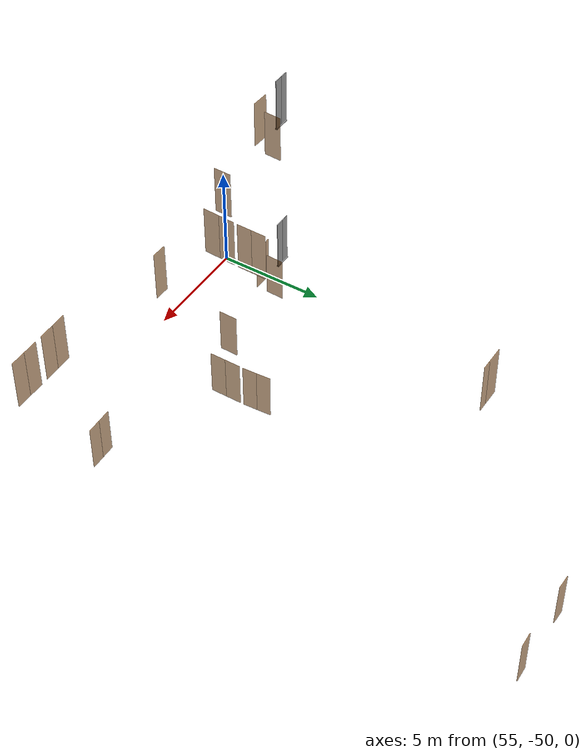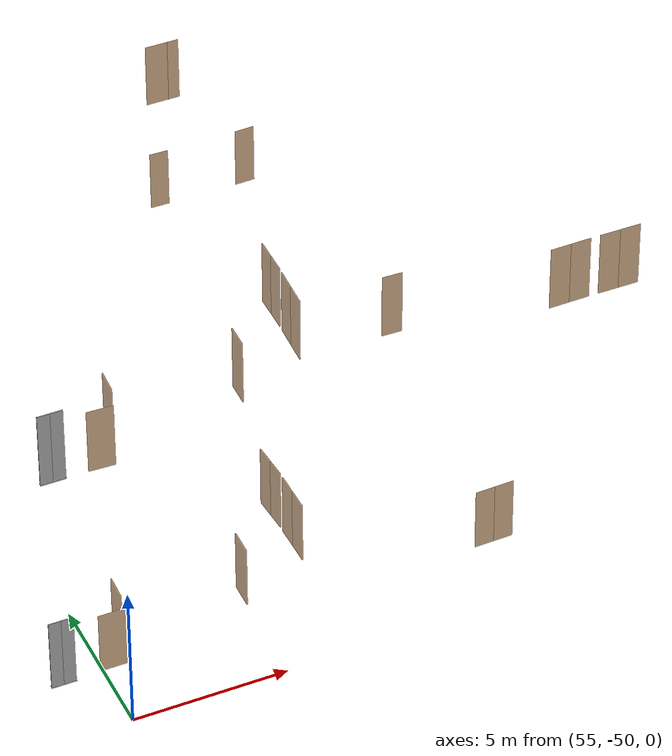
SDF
<sdf version="1.7">
 <world name="sim_world">
  <model name="bano06">
   <pose>55.41423266186635 -47.68037463002387 0.0 0 0 0.0023663209530105163</pose>
   <link name="right">
    <pose>0 0 1.11 0 0 0</pose>
    <visual name="right_visual">
     <geometry><box><size>0.976455656863217 0.03 2.2</size></box></geometry>
     <material>
      <ambient>0.5 0.25 0 0.6</ambient>
      <diffuse>0.5 0.25 0 0.6</diffuse>
      <pbr><metal><metalness>0.0</metalness></metal></pbr>
     </material>
    </visual>
    <collision name="right_collision">
     <geometry><box><size>0.976455656863217 0.03 2.2</size></box></geometry>
     <surface><contact><collide_bitmask>0x02</collide_bitmask></contact></surface>
    </collision>
    <inertial>
     <mass>50.0</mass>
     <inertia><ixx>20.17041666666667</ixx><iyy>24.139440207584073</iyy><izz>3.9765235409174027</izz></inertia>
    </inertial>
   </link>
   <joint name="right_joint" type="revolute">
    <parent>world</parent>
    <child>right</child>
    <axis><xyz>0 0 1</xyz><limit><lower>0</lower><upper>1.57</upper></limit></axis>
    <pose>0.4932278284316085 0 0 0 0 0</pose>
   </joint>
   <plugin name="register_component" filename="libregister_component.so">
    <component name="Door">
     <v_max_door>0.5</v_max_door>
     <a_max_door>0.3</a_max_door>
     <a_nom_door>0.15</a_nom_door>
     <dx_min_door>0.01</dx_min_door>
     <f_max_door>500.0</f_max_door>
     <ros_interface>true</ros_interface>
     <door name="bano06" type="SwingDoor" left_joint_name="empty_joint" right_joint_name="right_joint"/>
    </component>
   </plugin>
  </model>
  <model name="TD0008CW">
   <pose>55.8966070053002 -46.72136061243229 0.0 0 0 1.5301015660938087</pose>
   <link name="right">
    <pose>0 0 1.11 0 0 0</pose>
    <visual name="right_visual">
     <geometry><box><size>0.8644361759346737 0.03 2.2</size></box></geometry>
     <material>
      <ambient>0.5 0.25 0 0.6</ambient>
      <diffuse>0.5 0.25 0 0.6</diffuse>
      <pbr><metal><metalness>0.0</metalness></metal></pbr>
     </material>
    </visual>
    <collision name="right_collision">
     <geometry><box><size>0.8644361759346737 0.03 2.2</size></box></geometry>
     <surface><contact><collide_bitmask>0x02</collide_bitmask></contact></surface>
    </collision>
    <inertial>
     <mass>50.0</mass>
     <inertia><ixx>20.17041666666667</ixx><iyy>23.280207926102346</iyy><izz>3.117291259435676</izz></inertia>
    </inertial>
   </link>
   <joint name="right_joint" type="revolute">
    <parent>world</parent>
    <child>right</child>
    <axis><xyz>0 0 1</xyz><limit><lower>0</lower><upper>1.57</upper></limit></axis>
    <pose>0.43721808796733685 0 0 0 0 0</pose>
   </joint>
   <plugin name="register_component" filename="libregister_component.so">
    <component name="Door">
     <v_max_door>0.5</v_max_door>
     <a_max_door>0.3</a_max_door>
     <a_nom_door>0.15</a_nom_door>
     <dx_min_door>0.01</dx_min_door>
     <f_max_door>500.0</f_max_door>
     <ros_interface>true</ros_interface>
     <door name="TD0008CW" type="SwingDoor" left_joint_name="empty_joint" right_joint_name="right_joint"/>
    </component>
   </plugin>
  </model>
  <model name="TD0013CP1">
   <pose>62.36216044176366 -43.44836826337686 0.0 0 0 1.6319355253426715</pose>
   <link name="right">
    <pose>0.3315244328518623 0 1.11 0 0 0</pose>
    <visual name="right_visual">
     <geometry><box><size>0.6530488657037246 0.03 2.2</size></box></geometry>
     <material>
      <ambient>0.5 0.25 0 0.6</ambient>
      <diffuse>0.5 0.25 0 0.6</diffuse>
      <pbr><metal><metalness>0.0</metalness></metal></pbr>
     </material>
    </visual>
    <collision name="right_collision">
     <geometry><box><size>0.6530488657037246 0.03 2.2</size></box></geometry>
     <surface><contact><collide_bitmask>0x02</collide_bitmask></contact></surface>
    </collision>
    <inertial>
     <mass>50.0</mass>
     <inertia><ixx>20.17041666666667</ixx><iyy>21.943636754153843</iyy><izz>1.7807200874871723</izz></inertia>
    </inertial>
   </link>
   <joint name="right_joint" type="revolute">
    <parent>world</parent>
    <child>right</child>
    <axis><xyz>0 0 -1</xyz><limit><lower>0</lower><upper>1.57</upper></limit></axis>
    <pose>0.3315244328518623 0 0 0 0 0</pose>
   </joint>
   <link name="left">
    <pose>-0.3315244328518623 0 1.11 0 0 0</pose>
    <visual name="left_visual">
     <geometry><box><size>0.6530488657037246 0.03 2.2</size></box></geometry>
     <material>
      <ambient>0.5 0.25 0 0.6</ambient>
      <diffuse>0.5 0.25 0 0.6</diffuse>
      <pbr><metal><metalness>0.0</metalness></metal></pbr>
     </material>
    </visual>
    <collision name="left_collision">
     <geometry><box><size>0.6530488657037246 0.03 2.2</size></box></geometry>
     <surface><contact><collide_bitmask>0x02</collide_bitmask></contact></surface>
    </collision>
    <inertial>
     <mass>50.0</mass>
     <inertia><ixx>20.17041666666667</ixx><iyy>21.943636754153843</iyy><izz>1.7807200874871723</izz></inertia>
    </inertial>
   </link>
   <joint name="left_joint" type="revolute">
    <parent>world</parent>
    <child>left</child>
    <axis><xyz>0 0 -1</xyz><limit><lower>-1.57</lower><upper>0</upper></limit></axis>
    <pose>-0.3315244328518623 0 0 0 0 0</pose>
   </joint>
   <plugin name="register_component" filename="libregister_component.so">
    <component name="Door">
     <v_max_door>0.5</v_max_door>
     <a_max_door>0.3</a_max_door>
     <a_nom_door>0.15</a_nom_door>
     <dx_min_door>0.01</dx_min_door>
     <f_max_door>500.0</f_max_door>
     <ros_interface>true</ros_interface>
     <door name="TD0013CP1" type="DoubleSwingDoor" left_joint_name="left_joint" right_joint_name="right_joint"/>
    </component>
   </plugin>
  </model>
  <model name="TD0013CP2">
   <pose>62.40023819685919 -45.00493257504931 0.0 0 0 1.5720618208057906</pose>
   <link name="right">
    <pose>0.36802353716743 0 1.11 0 0 0</pose>
    <visual name="right_visual">
     <geometry><box><size>0.72604707433486 0.03 2.2</size></box></geometry>
     <material>
      <ambient>0.5 0.25 0 0.6</ambient>
      <diffuse>0.5 0.25 0 0.6</diffuse>
      <pbr><metal><metalness>0.0</metalness></metal></pbr>
     </material>
    </visual>
    <collision name="right_collision">
     <geometry><box><size>0.72604707433486 0.03 2.2</size></box></geometry>
     <surface><contact><collide_bitmask>0x02</collide_bitmask></contact></surface>
    </collision>
    <inertial>
     <mass>50.0</mass>
     <inertia><ixx>20.17041666666667</ixx><iyy>22.36310147562588</iyy><izz>2.2001848089592078</izz></inertia>
    </inertial>
   </link>
   <joint name="right_joint" type="revolute">
    <parent>world</parent>
    <child>right</child>
    <axis><xyz>0 0 -1</xyz><limit><lower>0</lower><upper>1.57</upper></limit></axis>
    <pose>0.36802353716743 0 0 0 0 0</pose>
   </joint>
   <link name="left">
    <pose>-0.36802353716743 0 1.11 0 0 0</pose>
    <visual name="left_visual">
     <geometry><box><size>0.72604707433486 0.03 2.2</size></box></geometry>
     <material>
      <ambient>0.5 0.25 0 0.6</ambient>
      <diffuse>0.5 0.25 0 0.6</diffuse>
      <pbr><metal><metalness>0.0</metalness></metal></pbr>
     </material>
    </visual>
    <collision name="left_collision">
     <geometry><box><size>0.72604707433486 0.03 2.2</size></box></geometry>
     <surface><contact><collide_bitmask>0x02</collide_bitmask></contact></surface>
    </collision>
    <inertial>
     <mass>50.0</mass>
     <inertia><ixx>20.17041666666667</ixx><iyy>22.36310147562588</iyy><izz>2.2001848089592078</izz></inertia>
    </inertial>
   </link>
   <joint name="left_joint" type="revolute">
    <parent>world</parent>
    <child>left</child>
    <axis><xyz>0 0 -1</xyz><limit><lower>-1.57</lower><upper>0</upper></limit></axis>
    <pose>-0.36802353716743 0 0 0 0 0</pose>
   </joint>
   <plugin name="register_component" filename="libregister_component.so">
    <component name="Door">
     <v_max_door>0.5</v_max_door>
     <a_max_door>0.3</a_max_door>
     <a_nom_door>0.15</a_nom_door>
     <dx_min_door>0.01</dx_min_door>
     <f_max_door>500.0</f_max_door>
     <ros_interface>true</ros_interface>
     <door name="TD0013CP2" type="DoubleSwingDoor" left_joint_name="left_joint" right_joint_name="right_joint"/>
    </component>
   </plugin>
  </model>
  <model name="bano07">
   <pose>60.06898852289842 -46.43233776989466 0.0 0 0 1.54727733475389</pose>
   <link name="right">
    <pose>0 0 1.11 0 0 0</pose>
    <visual name="right_visual">
     <geometry><box><size>0.8585207486559601 0.03 2.2</size></box></geometry>
     <material>
      <ambient>0.5 0.25 0 0.6</ambient>
      <diffuse>0.5 0.25 0 0.6</diffuse>
      <pbr><metal><metalness>0.0</metalness></metal></pbr>
     </material>
    </visual>
    <collision name="right_collision">
     <geometry><box><size>0.8585207486559601 0.03 2.2</size></box></geometry>
     <surface><contact><collide_bitmask>0x02</collide_bitmask></contact></surface>
    </collision>
    <inertial>
     <mass>50.0</mass>
     <inertia><ixx>20.17041666666667</ixx><iyy>23.237741149469965</iyy><izz>3.0748244828032925</izz></inertia>
    </inertial>
   </link>
   <joint name="right_joint" type="revolute">
    <parent>world</parent>
    <child>right</child>
    <axis><xyz>0 0 1</xyz><limit><lower>0</lower><upper>1.57</upper></limit></axis>
    <pose>0.43426037432798004 0 0 0 0 0</pose>
   </joint>
   <plugin name="register_component" filename="libregister_component.so">
    <component name="Door">
     <v_max_door>0.5</v_max_door>
     <a_max_door>0.3</a_max_door>
     <a_nom_door>0.15</a_nom_door>
     <dx_min_door>0.01</dx_min_door>
     <f_max_door>500.0</f_max_door>
     <ros_interface>true</ros_interface>
     <door name="bano07" type="SwingDoor" left_joint_name="empty_joint" right_joint_name="right_joint"/>
    </component>
   </plugin>
  </model>
  <model name="TD0001EC1">
   <pose>68.0815447480926 -47.3850784408613 0.0 0 0 0.026534896190855972</pose>
   <link name="right">
    <pose>0.32252315344996946 0 1.11 0 0 0</pose>
    <visual name="right_visual">
     <geometry><box><size>0.6350463068999389 0.03 2.2</size></box></geometry>
     <material>
      <ambient>0.5 0.25 0 0.6</ambient>
      <diffuse>0.5 0.25 0 0.6</diffuse>
      <pbr><metal><metalness>0.0</metalness></metal></pbr>
     </material>
    </visual>
    <collision name="right_collision">
     <geometry><box><size>0.6350463068999389 0.03 2.2</size></box></geometry>
     <surface><contact><collide_bitmask>0x02</collide_bitmask></contact></surface>
    </collision>
    <inertial>
     <mass>50.0</mass>
     <inertia><ixx>20.17041666666667</ixx><iyy>21.847015882946888</iyy><izz>1.6840992162802142</izz></inertia>
    </inertial>
   </link>
   <joint name="right_joint" type="revolute">
    <parent>world</parent>
    <child>right</child>
    <axis><xyz>0 0 -1</xyz><limit><lower>0</lower><upper>1.57</upper></limit></axis>
    <pose>0.32252315344996946 0 0 0 0 0</pose>
   </joint>
   <link name="left">
    <pose>-0.32252315344996946 0 1.11 0 0 0</pose>
    <visual name="left_visual">
     <geometry><box><size>0.6350463068999389 0.03 2.2</size></box></geometry>
     <material>
      <ambient>0.5 0.25 0 0.6</ambient>
      <diffuse>0.5 0.25 0 0.6</diffuse>
      <pbr><metal><metalness>0.0</metalness></metal></pbr>
     </material>
    </visual>
    <collision name="left_collision">
     <geometry><box><size>0.6350463068999389 0.03 2.2</size></box></geometry>
     <surface><contact><collide_bitmask>0x02</collide_bitmask></contact></surface>
    </collision>
    <inertial>
     <mass>50.0</mass>
     <inertia><ixx>20.17041666666667</ixx><iyy>21.847015882946888</iyy><izz>1.6840992162802142</izz></inertia>
    </inertial>
   </link>
   <joint name="left_joint" type="revolute">
    <parent>world</parent>
    <child>left</child>
    <axis><xyz>0 0 -1</xyz><limit><lower>-1.57</lower><upper>0</upper></limit></axis>
    <pose>-0.32252315344996946 0 0 0 0 0</pose>
   </joint>
   <plugin name="register_component" filename="libregister_component.so">
    <component name="Door">
     <v_max_door>0.5</v_max_door>
     <a_max_door>0.3</a_max_door>
     <a_nom_door>0.15</a_nom_door>
     <dx_min_door>0.01</dx_min_door>
     <f_max_door>500.0</f_max_door>
     <ros_interface>true</ros_interface>
     <door name="TD0001EC1" type="DoubleSwingDoor" left_joint_name="left_joint" right_joint_name="right_joint"/>
    </component>
   </plugin>
  </model>
  <model name="TD0005AO">
   <pose>65.31522333539226 -27.709574046337217 0.0 0 0 -0.01888775122043157</pose>
   <link name="right">
    <pose>0 0 1.11 0 0 0</pose>
    <visual name="right_visual">
     <geometry><box><size>0.6424321977480195 0.03 2.2</size></box></geometry>
     <material>
      <ambient>0.5 0.25 0 0.6</ambient>
      <diffuse>0.5 0.25 0 0.6</diffuse>
      <pbr><metal><metalness>0.0</metalness></metal></pbr>
     </material>
    </visual>
    <collision name="right_collision">
     <geometry><box><size>0.6424321977480195 0.03 2.2</size></box></geometry>
     <surface><contact><collide_bitmask>0x02</collide_bitmask></contact></surface>
    </collision>
    <inertial>
     <mass>50.0</mass>
     <inertia><ixx>20.17041666666667</ixx><iyy>21.88632970293063</iyy><izz>1.7234130362639606</izz></inertia>
    </inertial>
   </link>
   <joint name="right_joint" type="revolute">
    <parent>world</parent>
    <child>right</child>
    <axis><xyz>0 0 -1</xyz><limit><lower>0</lower><upper>1.57</upper></limit></axis>
    <pose>0.32621609887400976 0 0 0 0 0</pose>
   </joint>
   <plugin name="register_component" filename="libregister_component.so">
    <component name="Door">
     <v_max_door>0.5</v_max_door>
     <a_max_door>0.3</a_max_door>
     <a_nom_door>0.15</a_nom_door>
     <dx_min_door>0.01</dx_min_door>
     <f_max_door>500.0</f_max_door>
     <ros_interface>true</ros_interface>
     <door name="TD0005AO" type="SwingDoor" left_joint_name="empty_joint" right_joint_name="right_joint"/>
    </component>
   </plugin>
  </model>
  <model name="TD0006ET">
   <pose>68.41063171844957 -27.703424146604725 0.0 0 0 0.035708405053418484</pose>
   <link name="right">
    <pose>0 0 1.11 0 0 0</pose>
    <visual name="right_visual">
     <geometry><box><size>0.6796773215043894 0.03 2.2</size></box></geometry>
     <material>
      <ambient>0.5 0.25 0 0.6</ambient>
      <diffuse>0.5 0.25 0 0.6</diffuse>
      <pbr><metal><metalness>0.0</metalness></metal></pbr>
     </material>
    </visual>
    <collision name="right_collision">
     <geometry><box><size>0.6796773215043894 0.03 2.2</size></box></geometry>
     <surface><contact><collide_bitmask>0x02</collide_bitmask></contact></surface>
    </collision>
    <inertial>
     <mass>50.0</mass>
     <inertia><ixx>20.17041666666667</ixx><iyy>22.091505255697424</iyy><izz>1.928588589030755</izz></inertia>
    </inertial>
   </link>
   <joint name="right_joint" type="revolute">
    <parent>world</parent>
    <child>right</child>
    <axis><xyz>0 0 -1</xyz><limit><lower>0</lower><upper>1.57</upper></limit></axis>
    <pose>0.3448386607521947 0 0 0 0 0</pose>
   </joint>
   <plugin name="register_component" filename="libregister_component.so">
    <component name="Door">
     <v_max_door>0.5</v_max_door>
     <a_max_door>0.3</a_max_door>
     <a_nom_door>0.15</a_nom_door>
     <dx_min_door>0.01</dx_min_door>
     <f_max_door>500.0</f_max_door>
     <ros_interface>true</ros_interface>
     <door name="TD0006ET" type="SwingDoor" left_joint_name="empty_joint" right_joint_name="right_joint"/>
    </component>
   </plugin>
  </model>
  <model name="bano6">
   <pose>55.234940433910175 -47.778894369654296 8.0 0 0 -0.04549059902802838</pose>
   <link name="right">
    <pose>0 0 1.11 0 0 0</pose>
    <visual name="right_visual">
     <geometry><box><size>0.8297533818517685 0.03 2.2</size></box></geometry>
     <material>
      <ambient>0.5 0.25 0 0.6</ambient>
      <diffuse>0.5 0.25 0 0.6</diffuse>
      <pbr><metal><metalness>0.0</metalness></metal></pbr>
     </material>
    </visual>
    <collision name="right_collision">
     <geometry><box><size>0.8297533818517685 0.03 2.2</size></box></geometry>
     <surface><contact><collide_bitmask>0x02</collide_bitmask></contact></surface>
    </collision>
    <inertial>
     <mass>50.0</mass>
     <inertia><ixx>20.17041666666667</ixx><iyy>23.035377811226866</iyy><izz>2.8724611445601953</izz></inertia>
    </inertial>
   </link>
   <joint name="right_joint" type="revolute">
    <parent>world</parent>
    <child>right</child>
    <axis><xyz>0 0 1</xyz><limit><lower>0</lower><upper>1.57</upper></limit></axis>
    <pose>0.41987669092588426 0 0 0 0 0</pose>
   </joint>
   <plugin name="register_component" filename="libregister_component.so">
    <component name="Door">
     <v_max_door>0.5</v_max_door>
     <a_max_door>0.3</a_max_door>
     <a_nom_door>0.15</a_nom_door>
     <dx_min_door>0.01</dx_min_door>
     <f_max_door>500.0</f_max_door>
     <ros_interface>true</ros_interface>
     <door name="bano6" type="SwingDoor" left_joint_name="empty_joint" right_joint_name="right_joint"/>
    </component>
   </plugin>
  </model>
  <model name="TD0115CW">
   <pose>55.88847397362011 -46.73766025088821 8.0 0 0 1.5145458440551605</pose>
   <link name="right">
    <pose>0 0 1.11 0 0 0</pose>
    <visual name="right_visual">
     <geometry><box><size>0.8030795554057361 0.03 2.2</size></box></geometry>
     <material>
      <ambient>0.5 0.25 0 0.6</ambient>
      <diffuse>0.5 0.25 0 0.6</diffuse>
      <pbr><metal><metalness>0.0</metalness></metal></pbr>
     </material>
    </visual>
    <collision name="right_collision">
     <geometry><box><size>0.8030795554057361 0.03 2.2</size></box></geometry>
     <surface><contact><collide_bitmask>0x02</collide_bitmask></contact></surface>
    </collision>
    <inertial>
     <mass>50.0</mass>
     <inertia><ixx>20.17041666666667</ixx><iyy>22.853903217961147</iyy><izz>2.690986551294478</izz></inertia>
    </inertial>
   </link>
   <joint name="right_joint" type="revolute">
    <parent>world</parent>
    <child>right</child>
    <axis><xyz>0 0 1</xyz><limit><lower>0</lower><upper>1.57</upper></limit></axis>
    <pose>0.40653977770286803 0 0 0 0 0</pose>
   </joint>
   <plugin name="register_component" filename="libregister_component.so">
    <component name="Door">
     <v_max_door>0.5</v_max_door>
     <a_max_door>0.3</a_max_door>
     <a_nom_door>0.15</a_nom_door>
     <dx_min_door>0.01</dx_min_door>
     <f_max_door>500.0</f_max_door>
     <ros_interface>true</ros_interface>
     <door name="TD0115CW" type="SwingDoor" left_joint_name="empty_joint" right_joint_name="right_joint"/>
    </component>
   </plugin>
  </model>
  <model name="bano7">
   <pose>60.0810335978438 -46.42408954515949 8.0 0 0 1.541245749789117</pose>
   <link name="right">
    <pose>0 0 1.11 0 0 0</pose>
    <visual name="right_visual">
     <geometry><box><size>0.7806089194577953 0.03 2.2</size></box></geometry>
     <material>
      <ambient>0.5 0.25 0 0.6</ambient>
      <diffuse>0.5 0.25 0 0.6</diffuse>
      <pbr><metal><metalness>0.0</metalness></metal></pbr>
     </material>
    </visual>
    <collision name="right_collision">
     <geometry><box><size>0.7806089194577953 0.03 2.2</size></box></geometry>
     <surface><contact><collide_bitmask>0x02</collide_bitmask></contact></surface>
    </collision>
    <inertial>
     <mass>50.0</mass>
     <inertia><ixx>20.17041666666667</ixx><iyy>22.70562618807112</iyy><izz>2.5427095214044453</izz></inertia>
    </inertial>
   </link>
   <joint name="right_joint" type="revolute">
    <parent>world</parent>
    <child>right</child>
    <axis><xyz>0 0 1</xyz><limit><lower>0</lower><upper>1.57</upper></limit></axis>
    <pose>0.39530445972889766 0 0 0 0 0</pose>
   </joint>
   <plugin name="register_component" filename="libregister_component.so">
    <component name="Door">
     <v_max_door>0.5</v_max_door>
     <a_max_door>0.3</a_max_door>
     <a_nom_door>0.15</a_nom_door>
     <dx_min_door>0.01</dx_min_door>
     <f_max_door>500.0</f_max_door>
     <ros_interface>true</ros_interface>
     <door name="bano7" type="SwingDoor" left_joint_name="empty_joint" right_joint_name="right_joint"/>
    </component>
   </plugin>
  </model>
  <model name="TD0121CI">
   <pose>65.33917160585753 -45.769495344585565 8.0 0 0 -0.030342913966224207</pose>
   <link name="right">
    <pose>0 0 1.11 0 0 0</pose>
    <visual name="right_visual">
     <geometry><box><size>0.6424077246111844 0.03 2.2</size></box></geometry>
     <material>
      <ambient>0.5 0.25 0 0.6</ambient>
      <diffuse>0.5 0.25 0 0.6</diffuse>
      <pbr><metal><metalness>0.0</metalness></metal></pbr>
     </material>
    </visual>
    <collision name="right_collision">
     <geometry><box><size>0.6424077246111844 0.03 2.2</size></box></geometry>
     <surface><contact><collide_bitmask>0x02</collide_bitmask></contact></surface>
    </collision>
    <inertial>
     <mass>50.0</mass>
     <inertia><ixx>20.17041666666667</ixx><iyy>21.886198686000505</iyy><izz>1.723282019333831</izz></inertia>
    </inertial>
   </link>
   <joint name="right_joint" type="revolute">
    <parent>world</parent>
    <child>right</child>
    <axis><xyz>0 0 1</xyz><limit><lower>0</lower><upper>1.57</upper></limit></axis>
    <pose>0.32620386230559223 0 0 0 0 0</pose>
   </joint>
   <plugin name="register_component" filename="libregister_component.so">
    <component name="Door">
     <v_max_door>0.5</v_max_door>
     <a_max_door>0.3</a_max_door>
     <a_nom_door>0.15</a_nom_door>
     <dx_min_door>0.01</dx_min_door>
     <f_max_door>500.0</f_max_door>
     <ros_interface>true</ros_interface>
     <door name="TD0121CI" type="SwingDoor" left_joint_name="empty_joint" right_joint_name="right_joint"/>
    </component>
   </plugin>
  </model>
  <model name="TD0118CP2">
   <pose>72.41551607728127 -46.65071877677124 8.0 0 0 -0.0022488865674640916</pose>
   <link name="right">
    <pose>0.3351267501694839 0 1.11 0 0 0</pose>
    <visual name="right_visual">
     <geometry><box><size>0.6602535003389678 0.03 2.2</size></box></geometry>
     <material>
      <ambient>0.5 0.25 0 0.6</ambient>
      <diffuse>0.5 0.25 0 0.6</diffuse>
      <pbr><metal><metalness>0.0</metalness></metal></pbr>
     </material>
    </visual>
    <collision name="right_collision">
     <geometry><box><size>0.6602535003389678 0.03 2.2</size></box></geometry>
     <surface><contact><collide_bitmask>0x02</collide_bitmask></contact></surface>
    </collision>
    <inertial>
     <mass>50.0</mass>
     <inertia><ixx>20.17041666666667</ixx><iyy>21.983061186291085</iyy><izz>1.8201445196244141</izz></inertia>
    </inertial>
   </link>
   <joint name="right_joint" type="revolute">
    <parent>world</parent>
    <child>right</child>
    <axis><xyz>0 0 -1</xyz><limit><lower>0</lower><upper>1.57</upper></limit></axis>
    <pose>0.3351267501694839 0 0 0 0 0</pose>
   </joint>
   <link name="left">
    <pose>-0.3351267501694839 0 1.11 0 0 0</pose>
    <visual name="left_visual">
     <geometry><box><size>0.6602535003389678 0.03 2.2</size></box></geometry>
     <material>
      <ambient>0.5 0.25 0 0.6</ambient>
      <diffuse>0.5 0.25 0 0.6</diffuse>
      <pbr><metal><metalness>0.0</metalness></metal></pbr>
     </material>
    </visual>
    <collision name="left_collision">
     <geometry><box><size>0.6602535003389678 0.03 2.2</size></box></geometry>
     <surface><contact><collide_bitmask>0x02</collide_bitmask></contact></surface>
    </collision>
    <inertial>
     <mass>50.0</mass>
     <inertia><ixx>20.17041666666667</ixx><iyy>21.983061186291085</iyy><izz>1.8201445196244141</izz></inertia>
    </inertial>
   </link>
   <joint name="left_joint" type="revolute">
    <parent>world</parent>
    <child>left</child>
    <axis><xyz>0 0 -1</xyz><limit><lower>-1.57</lower><upper>0</upper></limit></axis>
    <pose>-0.3351267501694839 0 0 0 0 0</pose>
   </joint>
   <plugin name="register_component" filename="libregister_component.so">
    <component name="Door">
     <v_max_door>0.5</v_max_door>
     <a_max_door>0.3</a_max_door>
     <a_nom_door>0.15</a_nom_door>
     <dx_min_door>0.01</dx_min_door>
     <f_max_door>500.0</f_max_door>
     <ros_interface>true</ros_interface>
     <door name="TD0118CP2" type="DoubleSwingDoor" left_joint_name="left_joint" right_joint_name="right_joint"/>
    </component>
   </plugin>
  </model>
  <model name="TD0118CP1">
   <pose>70.76829959604194 -46.6575118798179 8.0 0 0 0.017164137838007427</pose>
   <link name="right">
    <pose>0.33436032065809285 0 1.11 0 0 0</pose>
    <visual name="right_visual">
     <geometry><box><size>0.6587206413161857 0.03 2.2</size></box></geometry>
     <material>
      <ambient>0.5 0.25 0 0.6</ambient>
      <diffuse>0.5 0.25 0 0.6</diffuse>
      <pbr><metal><metalness>0.0</metalness></metal></pbr>
     </material>
    </visual>
    <collision name="right_collision">
     <geometry><box><size>0.6587206413161857 0.03 2.2</size></box></geometry>
     <surface><contact><collide_bitmask>0x02</collide_bitmask></contact></surface>
    </collision>
    <inertial>
     <mass>50.0</mass>
     <inertia><ixx>20.17041666666667</ixx><iyy>21.974637013733368</iyy><izz>1.8117203470666958</izz></inertia>
    </inertial>
   </link>
   <joint name="right_joint" type="revolute">
    <parent>world</parent>
    <child>right</child>
    <axis><xyz>0 0 -1</xyz><limit><lower>0</lower><upper>1.57</upper></limit></axis>
    <pose>0.33436032065809285 0 0 0 0 0</pose>
   </joint>
   <link name="left">
    <pose>-0.33436032065809285 0 1.11 0 0 0</pose>
    <visual name="left_visual">
     <geometry><box><size>0.6587206413161857 0.03 2.2</size></box></geometry>
     <material>
      <ambient>0.5 0.25 0 0.6</ambient>
      <diffuse>0.5 0.25 0 0.6</diffuse>
      <pbr><metal><metalness>0.0</metalness></metal></pbr>
     </material>
    </visual>
    <collision name="left_collision">
     <geometry><box><size>0.6587206413161857 0.03 2.2</size></box></geometry>
     <surface><contact><collide_bitmask>0x02</collide_bitmask></contact></surface>
    </collision>
    <inertial>
     <mass>50.0</mass>
     <inertia><ixx>20.17041666666667</ixx><iyy>21.974637013733368</iyy><izz>1.8117203470666958</izz></inertia>
    </inertial>
   </link>
   <joint name="left_joint" type="revolute">
    <parent>world</parent>
    <child>left</child>
    <axis><xyz>0 0 -1</xyz><limit><lower>-1.57</lower><upper>0</upper></limit></axis>
    <pose>-0.33436032065809285 0 0 0 0 0</pose>
   </joint>
   <plugin name="register_component" filename="libregister_component.so">
    <component name="Door">
     <v_max_door>0.5</v_max_door>
     <a_max_door>0.3</a_max_door>
     <a_nom_door>0.15</a_nom_door>
     <dx_min_door>0.01</dx_min_door>
     <f_max_door>500.0</f_max_door>
     <ros_interface>true</ros_interface>
     <door name="TD0118CP1" type="DoubleSwingDoor" left_joint_name="left_joint" right_joint_name="right_joint"/>
    </component>
   </plugin>
  </model>
  <model name="TD0113ER">
   <pose>63.68090508117926 -32.32701846802637 8.0 0 0 0.00017906532679823228</pose>
   <link name="right">
    <pose>0.37216368440246184 0 1.11 0 0 0</pose>
    <visual name="right_visual">
     <geometry><box><size>0.3621636844024618 0.03 2.2</size></box></geometry>
     <material>
      <ambient>0.5 0.25 0 0.6</ambient>
      <diffuse>0.5 0.25 0 0.6</diffuse>
      <pbr><metal><metalness>0.0</metalness></metal></pbr>
     </material>
    </visual>
    <collision name="right_collision">
     <geometry><box><size>0.3621636844024618 0.03 2.2</size></box></geometry>
     <surface><contact><collide_bitmask>0x02</collide_bitmask></contact></surface>
    </collision>
    <inertial>
     <mass>50.0</mass>
     <inertia><ixx>20.17041666666667</ixx><iyy>20.71317722624986</iyy><izz>0.5502605595831916</izz></inertia>
    </inertial>
   </link>
   <joint name="right_joint" type="revolute">
    <parent>world</parent>
    <child>right</child>
    <axis><xyz>0 0 -1</xyz><limit><lower>0</lower><upper>1.57</upper></limit></axis>
    <pose>0.18608184220123092 0 0 0 0 0</pose>
   </joint>
   <link name="left">
    <pose>-0.18608184220123092 0 1.11 0 0 0</pose>
    <visual name="left_visual">
     <geometry><box><size>0.7343273688049237 0.03 2.2</size></box></geometry>
     <material>
      <ambient>0.5 0.25 0 0.6</ambient>
      <diffuse>0.5 0.25 0 0.6</diffuse>
      <pbr><metal><metalness>0.0</metalness></metal></pbr>
     </material>
    </visual>
    <collision name="left_collision">
     <geometry><box><size>0.7343273688049237 0.03 2.2</size></box></geometry>
     <surface><contact><collide_bitmask>0x02</collide_bitmask></contact></surface>
    </collision>
    <inertial>
     <mass>50.0</mass>
     <inertia><ixx>20.17041666666667</ixx><iyy>22.41348618573318</iyy><izz>2.2505695190665103</izz></inertia>
    </inertial>
   </link>
   <joint name="left_joint" type="revolute">
    <parent>world</parent>
    <child>left</child>
    <axis><xyz>0 0 -1</xyz><limit><lower>-1.57</lower><upper>0</upper></limit></axis>
    <pose>-0.37216368440246184 0 0 0 0 0</pose>
   </joint>
   <plugin name="register_component" filename="libregister_component.so">
    <component name="Door">
     <v_max_door>0.5</v_max_door>
     <a_max_door>0.3</a_max_door>
     <a_nom_door>0.15</a_nom_door>
     <dx_min_door>0.01</dx_min_door>
     <f_max_door>500.0</f_max_door>
     <ros_interface>true</ros_interface>
     <door name="TD0113ER" type="DoubleSwingDoor" left_joint_name="left_joint" right_joint_name="right_joint"/>
    </component>
   </plugin>
  </model>
  <model name="TD0119CP2">
   <pose>62.408047540033564 -45.011140276778626 8.0 0 0 1.5193640332775675</pose>
   <link name="right">
    <pose>0.3663535106896813 0 1.11 0 0 0</pose>
    <visual name="right_visual">
     <geometry><box><size>0.7227070213793626 0.03 2.2</size></box></geometry>
     <material>
      <ambient>0.5 0.25 0 0.6</ambient>
      <diffuse>0.5 0.25 0 0.6</diffuse>
      <pbr><metal><metalness>0.0</metalness></metal></pbr>
     </material>
    </visual>
    <collision name="right_collision">
     <geometry><box><size>0.7227070213793626 0.03 2.2</size></box></geometry>
     <surface><contact><collide_bitmask>0x02</collide_bitmask></contact></surface>
    </collision>
    <inertial>
     <mass>50.0</mass>
     <inertia><ixx>20.17041666666667</ixx><iyy>22.342939328129297</iyy><izz>2.1800226614626275</izz></inertia>
    </inertial>
   </link>
   <joint name="right_joint" type="revolute">
    <parent>world</parent>
    <child>right</child>
    <axis><xyz>0 0 -1</xyz><limit><lower>0</lower><upper>1.57</upper></limit></axis>
    <pose>0.3663535106896813 0 0 0 0 0</pose>
   </joint>
   <link name="left">
    <pose>-0.3663535106896813 0 1.11 0 0 0</pose>
    <visual name="left_visual">
     <geometry><box><size>0.7227070213793626 0.03 2.2</size></box></geometry>
     <material>
      <ambient>0.5 0.25 0 0.6</ambient>
      <diffuse>0.5 0.25 0 0.6</diffuse>
      <pbr><metal><metalness>0.0</metalness></metal></pbr>
     </material>
    </visual>
    <collision name="left_collision">
     <geometry><box><size>0.7227070213793626 0.03 2.2</size></box></geometry>
     <surface><contact><collide_bitmask>0x02</collide_bitmask></contact></surface>
    </collision>
    <inertial>
     <mass>50.0</mass>
     <inertia><ixx>20.17041666666667</ixx><iyy>22.342939328129297</iyy><izz>2.1800226614626275</izz></inertia>
    </inertial>
   </link>
   <joint name="left_joint" type="revolute">
    <parent>world</parent>
    <child>left</child>
    <axis><xyz>0 0 -1</xyz><limit><lower>-1.57</lower><upper>0</upper></limit></axis>
    <pose>-0.3663535106896813 0 0 0 0 0</pose>
   </joint>
   <plugin name="register_component" filename="libregister_component.so">
    <component name="Door">
     <v_max_door>0.5</v_max_door>
     <a_max_door>0.3</a_max_door>
     <a_nom_door>0.15</a_nom_door>
     <dx_min_door>0.01</dx_min_door>
     <f_max_door>500.0</f_max_door>
     <ros_interface>true</ros_interface>
     <door name="TD0119CP2" type="DoubleSwingDoor" left_joint_name="left_joint" right_joint_name="right_joint"/>
    </component>
   </plugin>
  </model>
  <model name="TD0119CP1">
   <pose>62.46754225161837 -43.451754707434986 8.0 0 0 1.5541844441469093</pose>
   <link name="right">
    <pose>0.33220970809886047 0 1.11 0 0 0</pose>
    <visual name="right_visual">
     <geometry><box><size>0.6544194161977209 0.03 2.2</size></box></geometry>
     <material>
      <ambient>0.5 0.25 0 0.6</ambient>
      <diffuse>0.5 0.25 0 0.6</diffuse>
      <pbr><metal><metalness>0.0</metalness></metal></pbr>
     </material>
    </visual>
    <collision name="right_collision">
     <geometry><box><size>0.6544194161977209 0.03 2.2</size></box></geometry>
     <surface><contact><collide_bitmask>0x02</collide_bitmask></contact></surface>
    </collision>
    <inertial>
     <mass>50.0</mass>
     <inertia><ixx>20.17041666666667</ixx><iyy>21.95110321790236</iyy><izz>1.7881865512356914</izz></inertia>
    </inertial>
   </link>
   <joint name="right_joint" type="revolute">
    <parent>world</parent>
    <child>right</child>
    <axis><xyz>0 0 -1</xyz><limit><lower>0</lower><upper>1.57</upper></limit></axis>
    <pose>0.33220970809886047 0 0 0 0 0</pose>
   </joint>
   <link name="left">
    <pose>-0.33220970809886047 0 1.11 0 0 0</pose>
    <visual name="left_visual">
     <geometry><box><size>0.6544194161977209 0.03 2.2</size></box></geometry>
     <material>
      <ambient>0.5 0.25 0 0.6</ambient>
      <diffuse>0.5 0.25 0 0.6</diffuse>
      <pbr><metal><metalness>0.0</metalness></metal></pbr>
     </material>
    </visual>
    <collision name="left_collision">
     <geometry><box><size>0.6544194161977209 0.03 2.2</size></box></geometry>
     <surface><contact><collide_bitmask>0x02</collide_bitmask></contact></surface>
    </collision>
    <inertial>
     <mass>50.0</mass>
     <inertia><ixx>20.17041666666667</ixx><iyy>21.95110321790236</iyy><izz>1.7881865512356914</izz></inertia>
    </inertial>
   </link>
   <joint name="left_joint" type="revolute">
    <parent>world</parent>
    <child>left</child>
    <axis><xyz>0 0 -1</xyz><limit><lower>-1.57</lower><upper>0</upper></limit></axis>
    <pose>-0.33220970809886047 0 0 0 0 0</pose>
   </joint>
   <plugin name="register_component" filename="libregister_component.so">
    <component name="Door">
     <v_max_door>0.5</v_max_door>
     <a_max_door>0.3</a_max_door>
     <a_nom_door>0.15</a_nom_door>
     <dx_min_door>0.01</dx_min_door>
     <f_max_door>500.0</f_max_door>
     <ros_interface>true</ros_interface>
     <door name="TD0119CP1" type="DoubleSwingDoor" left_joint_name="left_joint" right_joint_name="right_joint"/>
    </component>
   </plugin>
  </model>
  <model name="ShaftDoor_lift2td0_L1_lift2_door">
   <pose>53.75551043547694 -47.68096139483516 0.0 0 0 0.0</pose>
   <link name="right_door">
    <pose>0.2 0 1.25 0 0 0</pose>
    <visual name="right_door_visual">
     <geometry><box><size>0.4 0.03 2.5</size></box></geometry>
     <material>
      <ambient>0.5 0.5 0.5 1</ambient>
      <diffuse>0.7 0.7 0.7 1</diffuse>
      <specular>0.6 0.6 0.6 1</specular>
      <emissive>0.1 0.1 0.1 1</emissive>
     </material>
    </visual>
    <collision name="right_door_collision">
     <geometry><box><size>0.4 0.03 2.5</size></box></geometry>
     <surface><contact><collide_bitmask>0x02</collide_bitmask></contact></surface>
    </collision>
   </link>
   <link name="left_door">
    <pose>-0.2 0 1.25 0 0 0</pose>
    <visual name="left_door_visual">
     <geometry><box><size>0.4 0.03 2.5</size></box></geometry>
     <material>
      <ambient>0.5 0.5 0.5 1</ambient>
      <diffuse>0.7 0.7 0.7 1</diffuse>
      <specular>0.6 0.6 0.6 1</specular>
      <emissive>0.1 0.1 0.1 1</emissive>
     </material>
    </visual>
    <collision name="left_door_collision">
     <geometry><box><size>0.4 0.03 2.5</size></box></geometry>
     <surface><contact><collide_bitmask>0x02</collide_bitmask></contact></surface>
    </collision>
   </link>
   <joint name="right_joint" type="prismatic">
    <parent>world</parent>
    <child>right_door</child>
    <axis><xyz>1 0 0</xyz><limit><lower>0</lower><upper>0.4</upper></limit></axis>
   </joint>
   <joint name="left_joint" type="prismatic">
    <parent>world</parent>
    <child>left_door</child>
    <axis><xyz>1 0 0</xyz><limit><lower>-0.4</lower><upper>0</upper></limit></axis>
   </joint>
   <link name="ramp">
    <pose>0 0 -0.025 0 0 0</pose>
    <visual name="ramp_visual">
     <geometry><box><size>0.8 0.1 0.05</size></box></geometry>
     <material>
      <ambient>0.5 0.5 0.5 1</ambient>
      <diffuse>0.7 0.7 0.7 1</diffuse>
      <specular>0.6 0.6 0.6 1</specular>
      <emissive>0.1 0.1 0.1 1</emissive>
     </material>
    </visual>
    <collision name="ramp_collision">
     <geometry><box><size>0.8 0.1 0.05</size></box></geometry>
     <surface><contact><collide_bitmask>0x02</collide_bitmask></contact></surface>
    </collision>
   </link>
   <joint name="ramp_joint" type="fixed"><parent>world</parent><child>ramp</child></joint>
   <plugin name="register_component" filename="libregister_component.so">
    <component name="Door">
     <v_max_door>0.3</v_max_door>
     <a_max_door>0.2</a_max_door>
     <a_nom_door>0.1</a_nom_door>
     <dx_min_door>0.0001</dx_min_door>
     <f_max_door>35.0</f_max_door>
     <door left_joint_name="left_joint" name="ShaftDoor_lift2td0_L1_lift2_door" right_joint_name="right_joint" type="DoubleSlidingDoor"/>
    </component>
   </plugin>
  </model>
  <model name="ShaftDoor_lift2td0_L2_lift2_door">
   <pose>53.75551043547694 -47.68096139483516 8.0 0 0 0.0</pose>
   <link name="right_door">
    <pose>0.2 0 1.25 0 0 0</pose>
    <visual name="right_door_visual">
     <geometry><box><size>0.4 0.03 2.5</size></box></geometry>
     <material>
      <ambient>0.5 0.5 0.5 1</ambient>
      <diffuse>0.7 0.7 0.7 1</diffuse>
      <specular>0.6 0.6 0.6 1</specular>
      <emissive>0.1 0.1 0.1 1</emissive>
     </material>
    </visual>
    <collision name="right_door_collision">
     <geometry><box><size>0.4 0.03 2.5</size></box></geometry>
     <surface><contact><collide_bitmask>0x02</collide_bitmask></contact></surface>
    </collision>
   </link>
   <link name="left_door">
    <pose>-0.2 0 1.25 0 0 0</pose>
    <visual name="left_door_visual">
     <geometry><box><size>0.4 0.03 2.5</size></box></geometry>
     <material>
      <ambient>0.5 0.5 0.5 1</ambient>
      <diffuse>0.7 0.7 0.7 1</diffuse>
      <specular>0.6 0.6 0.6 1</specular>
      <emissive>0.1 0.1 0.1 1</emissive>
     </material>
    </visual>
    <collision name="left_door_collision">
     <geometry><box><size>0.4 0.03 2.5</size></box></geometry>
     <surface><contact><collide_bitmask>0x02</collide_bitmask></contact></surface>
    </collision>
   </link>
   <joint name="right_joint" type="prismatic">
    <parent>world</parent>
    <child>right_door</child>
    <axis><xyz>1 0 0</xyz><limit><lower>0</lower><upper>0.4</upper></limit></axis>
   </joint>
   <joint name="left_joint" type="prismatic">
    <parent>world</parent>
    <child>left_door</child>
    <axis><xyz>1 0 0</xyz><limit><lower>-0.4</lower><upper>0</upper></limit></axis>
   </joint>
   <link name="ramp">
    <pose>0 0 -0.025 0 0 0</pose>
    <visual name="ramp_visual">
     <geometry><box><size>0.8 0.1 0.05</size></box></geometry>
     <material>
      <ambient>0.5 0.5 0.5 1</ambient>
      <diffuse>0.7 0.7 0.7 1</diffuse>
      <specular>0.6 0.6 0.6 1</specular>
      <emissive>0.1 0.1 0.1 1</emissive>
     </material>
    </visual>
    <collision name="ramp_collision">
     <geometry><box><size>0.8 0.1 0.05</size></box></geometry>
     <surface><contact><collide_bitmask>0x02</collide_bitmask></contact></surface>
    </collision>
   </link>
   <joint name="ramp_joint" type="fixed"><parent>world</parent><child>ramp</child></joint>
   <plugin name="register_component" filename="libregister_component.so">
    <component name="Door">
     <v_max_door>0.3</v_max_door>
     <a_max_door>0.2</a_max_door>
     <a_nom_door>0.1</a_nom_door>
     <dx_min_door>0.0001</dx_min_door>
     <f_max_door>35.0</f_max_door>
     <door left_joint_name="left_joint" name="ShaftDoor_lift2td0_L2_lift2_door" right_joint_name="right_joint" type="DoubleSlidingDoor"/>
    </component>
   </plugin>
  </model>
 </world>
</sdf>
